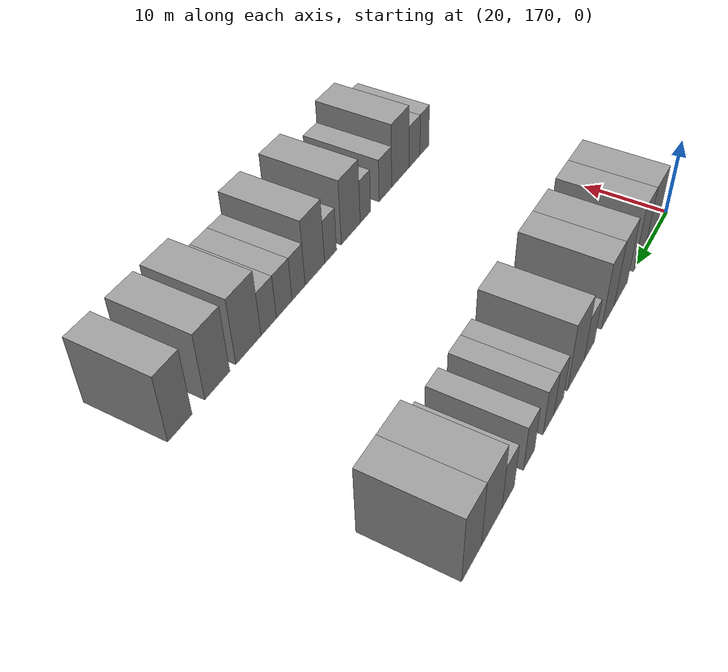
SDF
<sdf version="1.6">
 <world name="default">
  <model name="building_84">
   <static>1</static>
   <pose>25.0000 175.6330 0 0.000000 0.000000 0.000000</pose>
   <link name="link">
    <pose>0 0 4.50 0 0 0</pose>
    <collision name="collision"><geometry><box><size>10.0000 4.2664 9.0000</size></box></geometry></collision>
    <visual name="visual">
     <cast_shadows>0</cast_shadows>
     <geometry><box><size>10.0000 4.2664 9.0000</size></box></geometry>
     <material>
      <script>
       <uri>model://grey_wall/materials/scripts</uri>
       <uri>model://grey_wall/materials/textures</uri>
       <name>vrc/grey_wall</name>
      </script>
     </material>
    </visual>
   </link>
  </model>
  <model name="building_85">
   <static>1</static>
   <pose>25.0000 179.5804 0 0.000000 0.000000 0.000000</pose>
   <link name="link">
    <pose>0 0 4.50 0 0 0</pose>
    <collision name="collision"><geometry><box><size>10.0000 3.6284 9.0000</size></box></geometry></collision>
    <visual name="visual">
     <cast_shadows>0</cast_shadows>
     <geometry><box><size>10.0000 3.6284 9.0000</size></box></geometry>
     <material>
      <script>
       <uri>model://grey_wall/materials/scripts</uri>
       <uri>model://grey_wall/materials/textures</uri>
       <name>vrc/grey_wall</name>
      </script>
     </material>
    </visual>
   </link>
  </model>
  <model name="building_86">
   <static>1</static>
   <pose>25.0000 185.4361 0 0.000000 0.000000 0.000000</pose>
   <link name="link">
    <pose>0 0 4.50 0 0 0</pose>
    <collision name="collision"><geometry><box><size>10.0000 4.0831 9.0000</size></box></geometry></collision>
    <visual name="visual">
     <cast_shadows>0</cast_shadows>
     <geometry><box><size>10.0000 4.0831 9.0000</size></box></geometry>
     <material>
      <script>
       <uri>model://grey_wall/materials/scripts</uri>
       <uri>model://grey_wall/materials/textures</uri>
       <name>vrc/grey_wall</name>
      </script>
     </material>
    </visual>
   </link>
  </model>
  <model name="building_87">
   <static>1</static>
   <pose>25.0000 189.3608 0 0.000000 0.000000 0.000000</pose>
   <link name="link">
    <pose>0 0 4.50 0 0 0</pose>
    <collision name="collision"><geometry><box><size>10.0000 3.7663 9.0000</size></box></geometry></collision>
    <visual name="visual">
     <cast_shadows>0</cast_shadows>
     <geometry><box><size>10.0000 3.7663 9.0000</size></box></geometry>
     <material>
      <script>
       <uri>model://grey_wall/materials/scripts</uri>
       <uri>model://grey_wall/materials/textures</uri>
       <name>vrc/grey_wall</name>
      </script>
     </material>
    </visual>
   </link>
  </model>
  <model name="building_88">
   <static>1</static>
   <pose>25.0000 194.6899 0 0.000000 0.000000 0.000000</pose>
   <link name="link">
    <pose>0 0 3.00 0 0 0</pose>
    <collision name="collision"><geometry><box><size>10.0000 2.8918 6.0000</size></box></geometry></collision>
    <visual name="visual">
     <cast_shadows>0</cast_shadows>
     <geometry><box><size>10.0000 2.8918 6.0000</size></box></geometry>
     <material>
      <script>
       <uri>model://grey_wall/materials/scripts</uri>
       <uri>model://grey_wall/materials/textures</uri>
       <name>vrc/grey_wall</name>
      </script>
     </material>
    </visual>
   </link>
  </model>
  <model name="building_89">
   <static>1</static>
   <pose>25.0000 198.3590 0 0.000000 0.000000 0.000000</pose>
   <link name="link">
    <pose>0 0 4.50 0 0 0</pose>
    <collision name="collision"><geometry><box><size>10.0000 4.4465 9.0000</size></box></geometry></collision>
    <visual name="visual">
     <cast_shadows>0</cast_shadows>
     <geometry><box><size>10.0000 4.4465 9.0000</size></box></geometry>
     <material>
      <script>
       <uri>model://grey_wall/materials/scripts</uri>
       <uri>model://grey_wall/materials/textures</uri>
       <name>vrc/grey_wall</name>
      </script>
     </material>
    </visual>
   </link>
  </model>
  <model name="building_90">
   <static>1</static>
   <pose>25.0000 202.7858 0 0.000000 0.000000 0.000000</pose>
   <link name="link">
    <pose>0 0 3.00 0 0 0</pose>
    <collision name="collision"><geometry><box><size>10.0000 2.4072 6.0000</size></box></geometry></collision>
    <visual name="visual">
     <cast_shadows>0</cast_shadows>
     <geometry><box><size>10.0000 2.4072 6.0000</size></box></geometry>
     <material>
      <script>
       <uri>model://grey_wall/materials/scripts</uri>
       <uri>model://grey_wall/materials/textures</uri>
       <name>vrc/grey_wall</name>
      </script>
     </material>
    </visual>
   </link>
  </model>
  <model name="building_91">
   <static>1</static>
   <pose>25.0000 205.2989 0 0.000000 0.000000 0.000000</pose>
   <link name="link">
    <pose>0 0 3.00 0 0 0</pose>
    <collision name="collision"><geometry><box><size>10.0000 2.6191 6.0000</size></box></geometry></collision>
    <visual name="visual">
     <cast_shadows>0</cast_shadows>
     <geometry><box><size>10.0000 2.6191 6.0000</size></box></geometry>
     <material>
      <script>
       <uri>model://grey_wall/materials/scripts</uri>
       <uri>model://grey_wall/materials/textures</uri>
       <name>vrc/grey_wall</name>
      </script>
     </material>
    </visual>
   </link>
  </model>
  <model name="building_92">
   <static>1</static>
   <pose>25.0000 209.8812 0 0.000000 0.000000 0.000000</pose>
   <link name="link">
    <pose>0 0 3.00 0 0 0</pose>
    <collision name="collision"><geometry><box><size>10.0000 2.5454 6.0000</size></box></geometry></collision>
    <visual name="visual">
     <cast_shadows>0</cast_shadows>
     <geometry><box><size>10.0000 2.5454 6.0000</size></box></geometry>
     <material>
      <script>
       <uri>model://grey_wall/materials/scripts</uri>
       <uri>model://grey_wall/materials/textures</uri>
       <name>vrc/grey_wall</name>
      </script>
     </material>
    </visual>
   </link>
  </model>
  <model name="building_93">
   <static>1</static>
   <pose>25.0000 214.4726 0 0.000000 0.000000 0.000000</pose>
   <link name="link">
    <pose>0 0 3.00 0 0 0</pose>
    <collision name="collision"><geometry><box><size>10.0000 2.6375 6.0000</size></box></geometry></collision>
    <visual name="visual">
     <cast_shadows>0</cast_shadows>
     <geometry><box><size>10.0000 2.6375 6.0000</size></box></geometry>
     <material>
      <script>
       <uri>model://grey_wall/materials/scripts</uri>
       <uri>model://grey_wall/materials/textures</uri>
       <name>vrc/grey_wall</name>
      </script>
     </material>
    </visual>
   </link>
  </model>
  <model name="building_94">
   <static>1</static>
   <pose>25.0000 217.8817 0 0.000000 0.000000 0.000000</pose>
   <link name="link">
    <pose>0 0 4.50 0 0 0</pose>
    <collision name="collision"><geometry><box><size>10.0000 4.1807 9.0000</size></box></geometry></collision>
    <visual name="visual">
     <cast_shadows>0</cast_shadows>
     <geometry><box><size>10.0000 4.1807 9.0000</size></box></geometry>
     <material>
      <script>
       <uri>model://grey_wall/materials/scripts</uri>
       <uri>model://grey_wall/materials/textures</uri>
       <name>vrc/grey_wall</name>
      </script>
     </material>
    </visual>
   </link>
  </model>
  <model name="building_95">
   <static>1</static>
   <pose>25.0000 221.8728 0 0.000000 0.000000 0.000000</pose>
   <link name="link">
    <pose>0 0 4.50 0 0 0</pose>
    <collision name="collision"><geometry><box><size>10.0000 3.8014 9.0000</size></box></geometry></collision>
    <visual name="visual">
     <cast_shadows>0</cast_shadows>
     <geometry><box><size>10.0000 3.8014 9.0000</size></box></geometry>
     <material>
      <script>
       <uri>model://grey_wall/materials/scripts</uri>
       <uri>model://grey_wall/materials/textures</uri>
       <name>vrc/grey_wall</name>
      </script>
     </material>
    </visual>
   </link>
  </model>
  <model name="building_191">
   <static>1</static>
   <pose>55.0000 172.6611 0 0.000000 0.000000 0.000000</pose>
   <link name="link">
    <pose>0 0 3.00 0 0 0</pose>
    <collision name="collision"><geometry><box><size>10.0000 2.4199 6.0000</size></box></geometry></collision>
    <visual name="visual">
     <cast_shadows>0</cast_shadows>
     <geometry><box><size>10.0000 2.4199 6.0000</size></box></geometry>
     <material>
      <script>
       <uri>model://grey_wall/materials/scripts</uri>
       <uri>model://grey_wall/materials/textures</uri>
       <name>vrc/grey_wall</name>
      </script>
     </material>
    </visual>
   </link>
  </model>
  <model name="building_192">
   <static>1</static>
   <pose>55.0000 175.2833 0 0.000000 0.000000 0.000000</pose>
   <link name="link">
    <pose>0 0 3.00 0 0 0</pose>
    <collision name="collision"><geometry><box><size>10.0000 2.8246 6.0000</size></box></geometry></collision>
    <visual name="visual">
     <cast_shadows>0</cast_shadows>
     <geometry><box><size>10.0000 2.8246 6.0000</size></box></geometry>
     <material>
      <script>
       <uri>model://grey_wall/materials/scripts</uri>
       <uri>model://grey_wall/materials/textures</uri>
       <name>vrc/grey_wall</name>
      </script>
     </material>
    </visual>
   </link>
  </model>
  <model name="building_193">
   <static>1</static>
   <pose>55.0000 178.8643 0 0.000000 0.000000 0.000000</pose>
   <link name="link">
    <pose>0 0 4.50 0 0 0</pose>
    <collision name="collision"><geometry><box><size>10.0000 4.3374 9.0000</size></box></geometry></collision>
    <visual name="visual">
     <cast_shadows>0</cast_shadows>
     <geometry><box><size>10.0000 4.3374 9.0000</size></box></geometry>
     <material>
      <script>
       <uri>model://grey_wall/materials/scripts</uri>
       <uri>model://grey_wall/materials/textures</uri>
       <name>vrc/grey_wall</name>
      </script>
     </material>
    </visual>
   </link>
  </model>
  <model name="building_194">
   <static>1</static>
   <pose>55.0000 182.5323 0 0.000000 0.000000 0.000000</pose>
   <link name="link">
    <pose>0 0 3.00 0 0 0</pose>
    <collision name="collision"><geometry><box><size>10.0000 2.9985 6.0000</size></box></geometry></collision>
    <visual name="visual">
     <cast_shadows>0</cast_shadows>
     <geometry><box><size>10.0000 2.9985 6.0000</size></box></geometry>
     <material>
      <script>
       <uri>model://grey_wall/materials/scripts</uri>
       <uri>model://grey_wall/materials/textures</uri>
       <name>vrc/grey_wall</name>
      </script>
     </material>
    </visual>
   </link>
  </model>
  <model name="building_195">
   <static>1</static>
   <pose>55.0000 187.2330 0 0.000000 0.000000 0.000000</pose>
   <link name="link">
    <pose>0 0 3.00 0 0 0</pose>
    <collision name="collision"><geometry><box><size>10.0000 2.4029 6.0000</size></box></geometry></collision>
    <visual name="visual">
     <cast_shadows>0</cast_shadows>
     <geometry><box><size>10.0000 2.4029 6.0000</size></box></geometry>
     <material>
      <script>
       <uri>model://grey_wall/materials/scripts</uri>
       <uri>model://grey_wall/materials/textures</uri>
       <name>vrc/grey_wall</name>
      </script>
     </material>
    </visual>
   </link>
  </model>
  <model name="building_196">
   <static>1</static>
   <pose>55.0000 190.5406 0 0.000000 0.000000 0.000000</pose>
   <link name="link">
    <pose>0 0 4.50 0 0 0</pose>
    <collision name="collision"><geometry><box><size>10.0000 4.2122 9.0000</size></box></geometry></collision>
    <visual name="visual">
     <cast_shadows>0</cast_shadows>
     <geometry><box><size>10.0000 4.2122 9.0000</size></box></geometry>
     <material>
      <script>
       <uri>model://grey_wall/materials/scripts</uri>
       <uri>model://grey_wall/materials/textures</uri>
       <name>vrc/grey_wall</name>
      </script>
     </material>
    </visual>
   </link>
  </model>
  <model name="building_197">
   <static>1</static>
   <pose>55.0000 194.9078 0 0.000000 0.000000 0.000000</pose>
   <link name="link">
    <pose>0 0 3.00 0 0 0</pose>
    <collision name="collision"><geometry><box><size>10.0000 2.5222 6.0000</size></box></geometry></collision>
    <visual name="visual">
     <cast_shadows>0</cast_shadows>
     <geometry><box><size>10.0000 2.5222 6.0000</size></box></geometry>
     <material>
      <script>
       <uri>model://grey_wall/materials/scripts</uri>
       <uri>model://grey_wall/materials/textures</uri>
       <name>vrc/grey_wall</name>
      </script>
     </material>
    </visual>
   </link>
  </model>
  <model name="building_198">
   <static>1</static>
   <pose>55.0000 198.1498 0 0.000000 0.000000 0.000000</pose>
   <link name="link">
    <pose>0 0 4.50 0 0 0</pose>
    <collision name="collision"><geometry><box><size>10.0000 3.9617 9.0000</size></box></geometry></collision>
    <visual name="visual">
     <cast_shadows>0</cast_shadows>
     <geometry><box><size>10.0000 3.9617 9.0000</size></box></geometry>
     <material>
      <script>
       <uri>model://grey_wall/materials/scripts</uri>
       <uri>model://grey_wall/materials/textures</uri>
       <name>vrc/grey_wall</name>
      </script>
     </material>
    </visual>
   </link>
  </model>
  <model name="building_199">
   <static>1</static>
   <pose>55.0000 201.4036 0 0.000000 0.000000 0.000000</pose>
   <link name="link">
    <pose>0 0 3.00 0 0 0</pose>
    <collision name="collision"><geometry><box><size>10.0000 2.5461 6.0000</size></box></geometry></collision>
    <visual name="visual">
     <cast_shadows>0</cast_shadows>
     <geometry><box><size>10.0000 2.5461 6.0000</size></box></geometry>
     <material>
      <script>
       <uri>model://grey_wall/materials/scripts</uri>
       <uri>model://grey_wall/materials/textures</uri>
       <name>vrc/grey_wall</name>
      </script>
     </material>
    </visual>
   </link>
  </model>
  <model name="building_200">
   <static>1</static>
   <pose>55.0000 204.1668 0 0.000000 0.000000 0.000000</pose>
   <link name="link">
    <pose>0 0 3.00 0 0 0</pose>
    <collision name="collision"><geometry><box><size>10.0000 2.9802 6.0000</size></box></geometry></collision>
    <visual name="visual">
     <cast_shadows>0</cast_shadows>
     <geometry><box><size>10.0000 2.9802 6.0000</size></box></geometry>
     <material>
      <script>
       <uri>model://grey_wall/materials/scripts</uri>
       <uri>model://grey_wall/materials/textures</uri>
       <name>vrc/grey_wall</name>
      </script>
     </material>
    </visual>
   </link>
  </model>
  <model name="building_201">
   <static>1</static>
   <pose>55.0000 207.0700 0 0.000000 0.000000 0.000000</pose>
   <link name="link">
    <pose>0 0 3.00 0 0 0</pose>
    <collision name="collision"><geometry><box><size>10.0000 2.8263 6.0000</size></box></geometry></collision>
    <visual name="visual">
     <cast_shadows>0</cast_shadows>
     <geometry><box><size>10.0000 2.8263 6.0000</size></box></geometry>
     <material>
      <script>
       <uri>model://grey_wall/materials/scripts</uri>
       <uri>model://grey_wall/materials/textures</uri>
       <name>vrc/grey_wall</name>
      </script>
     </material>
    </visual>
   </link>
  </model>
  <model name="building_202">
   <static>1</static>
   <pose>55.0000 210.6975 0 0.000000 0.000000 0.000000</pose>
   <link name="link">
    <pose>0 0 4.50 0 0 0</pose>
    <collision name="collision"><geometry><box><size>10.0000 4.4287 9.0000</size></box></geometry></collision>
    <visual name="visual">
     <cast_shadows>0</cast_shadows>
     <geometry><box><size>10.0000 4.4287 9.0000</size></box></geometry>
     <material>
      <script>
       <uri>model://grey_wall/materials/scripts</uri>
       <uri>model://grey_wall/materials/textures</uri>
       <name>vrc/grey_wall</name>
      </script>
     </material>
    </visual>
   </link>
  </model>
  <model name="building_203">
   <static>1</static>
   <pose>55.0000 215.9666 0 0.000000 0.000000 0.000000</pose>
   <link name="link">
    <pose>0 0 4.50 0 0 0</pose>
    <collision name="collision"><geometry><box><size>10.0000 4.1095 9.0000</size></box></geometry></collision>
    <visual name="visual">
     <cast_shadows>0</cast_shadows>
     <geometry><box><size>10.0000 4.1095 9.0000</size></box></geometry>
     <material>
      <script>
       <uri>model://grey_wall/materials/scripts</uri>
       <uri>model://grey_wall/materials/textures</uri>
       <name>vrc/grey_wall</name>
      </script>
     </material>
    </visual>
   </link>
  </model>
  <model name="building_204">
   <static>1</static>
   <pose>55.0000 221.8765 0 0.000000 0.000000 0.000000</pose>
   <link name="link">
    <pose>0 0 4.50 0 0 0</pose>
    <collision name="collision"><geometry><box><size>10.0000 3.7104 9.0000</size></box></geometry></collision>
    <visual name="visual">
     <cast_shadows>0</cast_shadows>
     <geometry><box><size>10.0000 3.7104 9.0000</size></box></geometry>
     <material>
      <script>
       <uri>model://grey_wall/materials/scripts</uri>
       <uri>model://grey_wall/materials/textures</uri>
       <name>vrc/grey_wall</name>
      </script>
     </material>
    </visual>
   </link>
  </model>
 </world>
</sdf>
